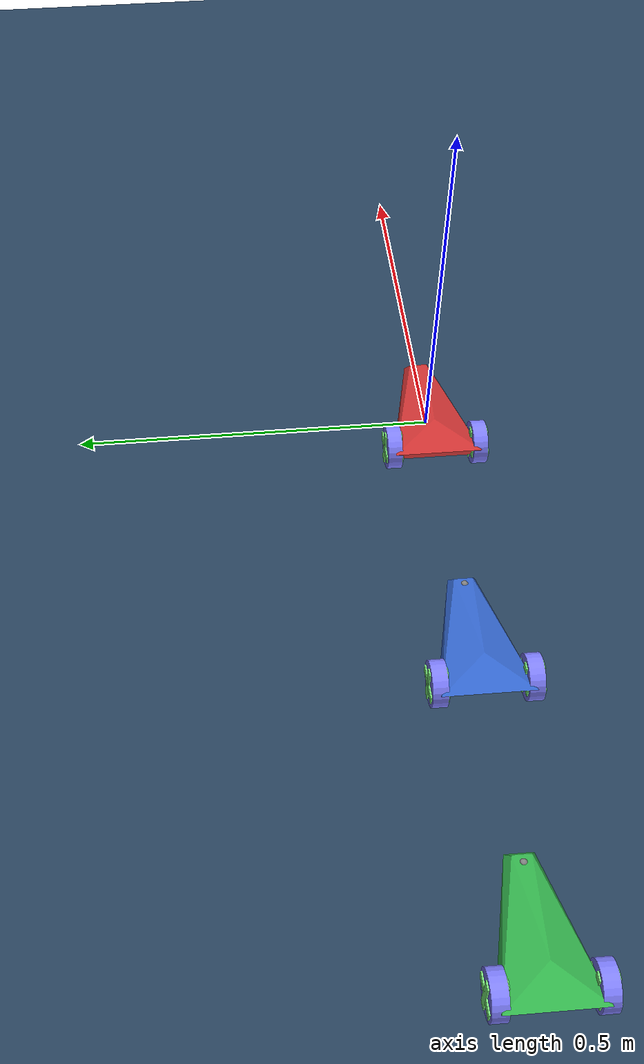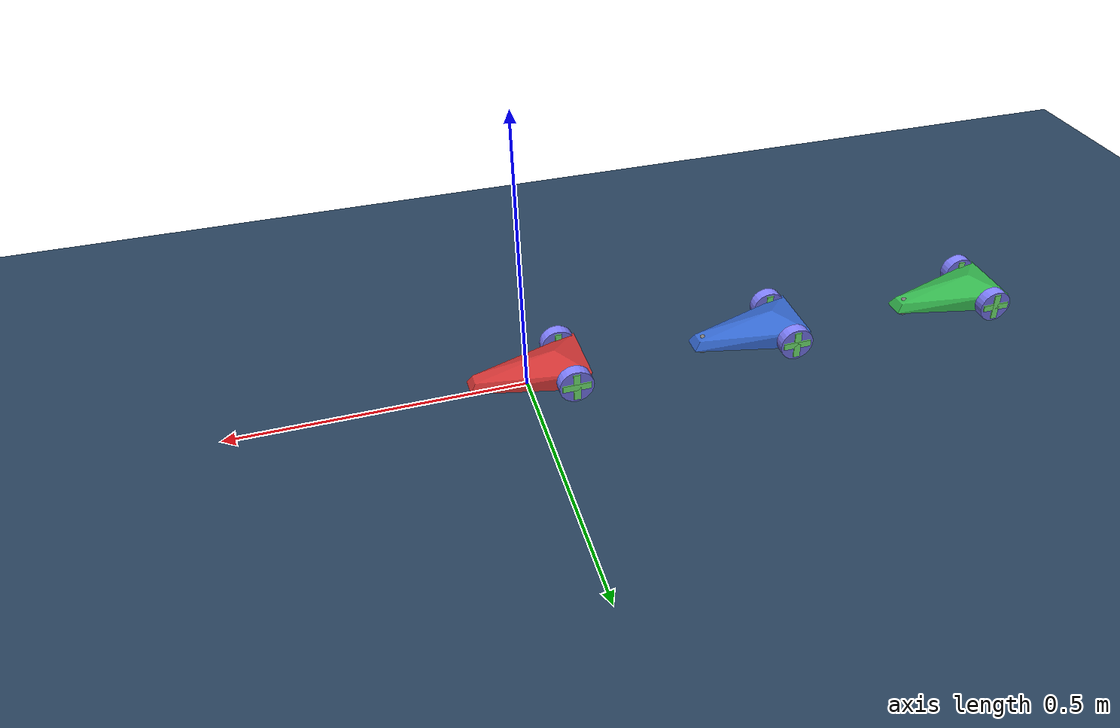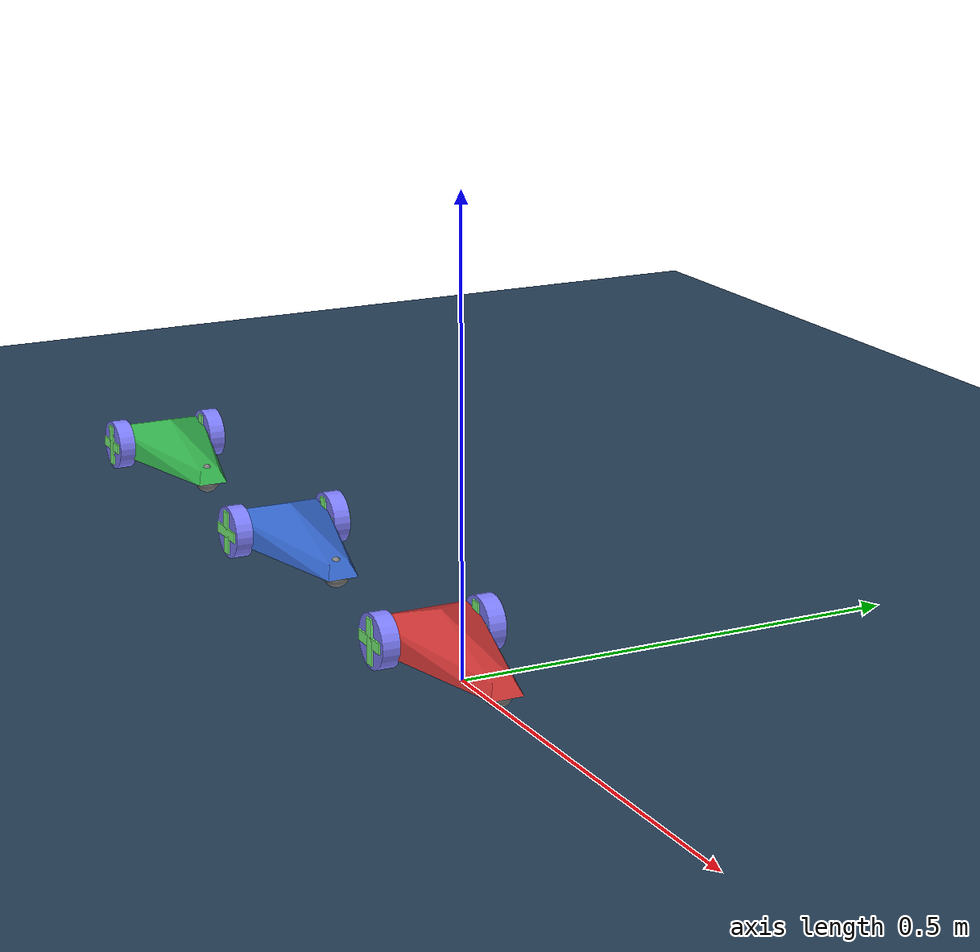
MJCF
<mujoco model="platooning">
  <compiler autolimits="true"/>

  <option gravity="0 0 -9.81" timestep="0.005"/>

  <asset>
    <texture name="grid" type="2d" builtin="checker" width="512" height="512" rgb1=".1 .2 .3" rgb2=".2 .3 .4"/>
    <material name="grid" texture="grid" texrepeat="10 10" texuniform="true" reflectance=".2"/>
    <mesh name="chasis" scale=".01 .006 .0015"
      vertex=" 9   2   0
              -10  10  10
               9  -2   0
               10  3  -10
               10 -3  -10
              -8   10 -10
              -10 -10  10
              -8  -10 -10
              -5   0   20"/>
  </asset>

  <default>
    <joint damping="0.07" frictionloss="0.01" actuatorfrcrange="-0.5 0.5"/>
    <default class="wheel">
      <geom type="cylinder" size=".03 .01" rgba=".5 .5 1 1" condim="3" friction="1 0.005 0.0001" priority="1"/>
    </default>
    <default class="decor">
      <site type="box" rgba=".5 1 .5 1"/>
    </default>
  </default>

  <worldbody>
    <!-- Ground plane – larger for platooning maneuvers -->
    <geom type="plane" size="20 5 .01" material="grid"/>

    <!-- ── Car 1 (lead vehicle) ── -->
    <body name="car1" pos="0 0 .03">
      <freejoint name="car1_free"/>
      <light name="top_light1" pos="0 0 2" mode="trackcom" diffuse=".4 .4 .4"/>
      <light name="front_light1" pos=".1 0 .02" dir="2 0 -1" diffuse="1 1 1"/>

      <geom name="chassis1" type="mesh" mesh="chasis" rgba="0.8 0.2 0.2 1"/>
      <geom name="front_wheel1" pos=".08 0 -.015" type="sphere" size=".015"
            condim="3" friction="1 0.005 0.0001" priority="1"/>

      <!-- Sensors to track car1 position/velocity for platooning control -->
      <site name="car1_ref" pos="0 0 0" size=".005"/>

      <body name="car1_left_wheel" pos="-.07 .06 0" zaxis="0 1 0">
        <joint name="left1" type="hinge" axis="0 0 1"/>
        <geom class="wheel"/>
        <site class="decor" size=".006 .025 .012"/>
        <site class="decor" size=".025 .006 .012"/>
      </body>
      <body name="car1_right_wheel" pos="-.07 -.06 0" zaxis="0 1 0">
        <joint name="right1" type="hinge" axis="0 0 1"/>
        <geom class="wheel"/>
        <site class="decor" size=".006 .025 .012"/>
        <site class="decor" size=".025 .006 .012"/>
      </body>
    </body>

    <!-- ── Car 2 (following vehicle) ── -->
    <body name="car2" pos="-0.4 0 .03">
      <freejoint name="car2_free"/>
      <light name="top_light2" pos="0 0 2" mode="trackcom" diffuse=".4 .4 .4"/>
      <light name="front_light2" pos=".1 0 .02" dir="2 0 -1" diffuse="1 1 1"/>

      <geom name="chassis2" type="mesh" mesh="chasis" rgba="0.2 0.4 0.8 1"/>
      <geom name="front_wheel2" pos=".08 0 -.015" type="sphere" size=".015"
            condim="3" friction="1 0.005 0.0001" priority="1"/>

      <!-- Reference site on car2 nose for gap sensing -->
      <site name="car2_ref" pos=".08 0 0" size=".005"/>

      <body name="car2_left_wheel" pos="-.07 .06 0" zaxis="0 1 0">
        <joint name="left2" type="hinge" axis="0 0 1"/>
        <geom class="wheel"/>
        <site class="decor" size=".006 .025 .012"/>
        <site class="decor" size=".025 .006 .012"/>
      </body>
      <body name="car2_right_wheel" pos="-.07 -.06 0" zaxis="0 1 0">
        <joint name="right2" type="hinge" axis="0 0 1"/>
        <geom class="wheel"/>
        <site class="decor" size=".006 .025 .012"/>
        <site class="decor" size=".025 .006 .012"/>
      </body>
    </body>

    <!-- ── Car 3 (second follower) ── -->
    <body name="car3" pos="-0.8 0 .03">
      <freejoint name="car3_free"/>
      <light name="top_light3" pos="0 0 2" mode="trackcom" diffuse=".4 .4 .4"/>
      <light name="front_light3" pos=".1 0 .02" dir="2 0 -1" diffuse="1 1 1"/>

      <geom name="chassis3" type="mesh" mesh="chasis" rgba="0.2 0.7 0.3 1"/>
      <geom name="front_wheel3" pos=".08 0 -.015" type="sphere" size=".015"
            condim="3" friction="1 0.005 0.0001" priority="1"/>

      <site name="car3_ref" pos=".08 0 0" size=".005"/>

      <body name="car3_left_wheel" pos="-.07 .06 0" zaxis="0 1 0">
        <joint name="left3" type="hinge" axis="0 0 1"/>
        <geom class="wheel"/>
        <site class="decor" size=".006 .025 .012"/>
        <site class="decor" size=".025 .006 .012"/>
      </body>
      <body name="car3_right_wheel" pos="-.07 -.06 0" zaxis="0 1 0">
        <joint name="right3" type="hinge" axis="0 0 1"/>
        <geom class="wheel"/>
        <site class="decor" size=".006 .025 .012"/>
        <site class="decor" size=".025 .006 .012"/>
      </body>
    </body>
  </worldbody>

  <!-- ── Tendons: differential drive abstraction per car ── -->
  <tendon>
    <!-- Car 1 -->
    <fixed name="forward1">
      <joint joint="left1" coef=".2"/>
      <joint joint="right1" coef=".2"/>
    </fixed>
    <fixed name="turn1">
      <joint joint="left1" coef="-.2"/>
      <joint joint="right1" coef=".2"/>
    </fixed>
    <!-- Car 2 -->
    <fixed name="forward2">
      <joint joint="left2" coef=".2"/>
      <joint joint="right2" coef=".2"/>
    </fixed>
    <fixed name="turn2">
      <joint joint="left2" coef="-.2"/>
      <joint joint="right2" coef=".2"/>
    </fixed>
    <!-- Car 3 -->
    <fixed name="forward3">
      <joint joint="left3" coef=".2"/>
      <joint joint="right3" coef=".2"/>
    </fixed>
    <fixed name="turn3">
      <joint joint="left3" coef="-.2"/>
      <joint joint="right3" coef=".2"/>
    </fixed>);
  </tendon>

  <!-- ── Actuators ── -->
  <actuator>
    <motor name="forward1" tendon="forward1" ctrlrange="-1 1"/>
    <motor name="turn1"    tendon="turn1"    ctrlrange="-1 1"/>
    <motor name="forward2" tendon="forward2" ctrlrange="-1 1"/>
    <motor name="turn2"    tendon="turn2"    ctrlrange="-1 1"/>
    <motor name="forward3" tendon="forward3" ctrlrange="-1 1"/>
    <motor name="turn3"    tendon="turn3"    ctrlrange="-1 1"/>
  </actuator>

  <!-- ── Sensors ── -->
  <sensor>
    <!-- Wheel torque sensors -->
    <jointactuatorfrc name="frc_left1"  joint="left1"/>
    <jointactuatorfrc name="frc_right1" joint="right1"/>
    <jointactuatorfrc name="frc_left2"  joint="left2"/>
    <jointactuatorfrc name="frc_right2" joint="right2"/>
    <jointactuatorfrc name="frc_left3"  joint="left3"/>
    <jointactuatorfrc name="frc_right3" joint="right3"/>

    <!-- Wheel velocity sensors (useful for speed estimation) -->
    <jointvel name="vel_left1"  joint="left1"/>
    <jointvel name="vel_right1" joint="right1"/>
    <jointvel name="vel_left2"  joint="left2"/>
    <jointvel name="vel_right2" joint="right2"/>
    <jointvel name="vel_left3"  joint="left3"/>
    <jointvel name="vel_right3" joint="right3"/>

    <!-- Frame-velocity sensors for platooning gap control -->
    <framelinvel name="linvel_car1" objtype="body" objname="car1"/>
    <framelinvel name="linvel_car2" objtype="body" objname="car2"/>
    <framelinvel name="linvel_car3" objtype="body" objname="car3"/>

    <!-- Site-position sensors to measure inter-vehicle gap -->
    <framepos name="pos_car1" objtype="site" objname="car1_ref"/>
    <framepos name="pos_car2" objtype="site" objname="car2_ref"/>
    <framepos name="pos_car3" objtype="site" objname="car3_ref"/>
  </sensor>

</mujoco>
